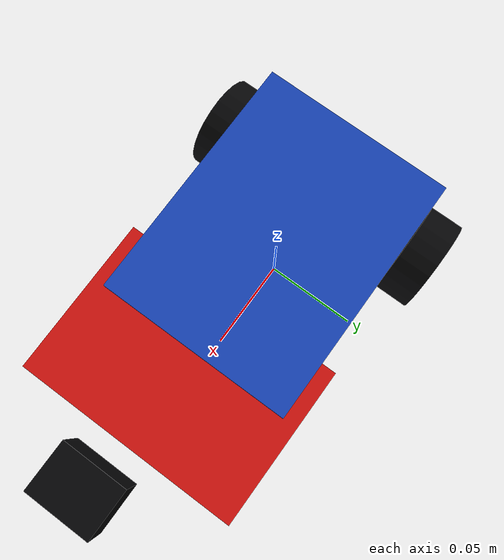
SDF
<?xml version="1.0"?>
<sdf version="1.9">
  <model name="touch_car">
    <pose>0 0 0 0 0 0</pose>

    <link name="base_link">
      <inertial>
        <mass>0.45</mass>
        <inertia>
          <ixx>0.00045</ixx>
          <iyy>0.00075</iyy>
          <izz>0.0010</izz>
        </inertia>
      </inertial>
      <collision name="base_collision">
        <pose>0 0 0.0475 0 0 0</pose>
        <geometry>
          <box>
            <size>0.13 0.10 0.045</size>
          </box>
        </geometry>
      </collision>
      <visual name="base_visual">
        <pose>0 0 0.0475 0 0 0</pose>
        <geometry>
          <box>
            <size>0.13 0.10 0.045</size>
          </box>
        </geometry>
        <material>
          <ambient>0.10 0.28 0.75 1</ambient>
          <diffuse>0.10 0.28 0.75 1</diffuse>
        </material>
      </visual>
    </link>

    <link name="left_wheel_link">
      <pose>-0.045 0.060 0.025 1.57079632679 0 0</pose>
      <inertial>
        <mass>0.06</mass>
        <inertia>
          <ixx>0.00002</ixx>
          <iyy>0.00002</iyy>
          <izz>0.00002</izz>
        </inertia>
      </inertial>
      <collision name="left_wheel_collision">
        <geometry>
          <cylinder>
            <radius>0.025</radius>
            <length>0.018</length>
          </cylinder>
        </geometry>
      </collision>
      <visual name="left_wheel_visual">
        <geometry>
          <cylinder>
            <radius>0.025</radius>
            <length>0.018</length>
          </cylinder>
        </geometry>
        <material>
          <ambient>0.02 0.02 0.025 1</ambient>
          <diffuse>0.02 0.02 0.025 1</diffuse>
        </material>
      </visual>
    </link>

    <link name="right_wheel_link">
      <pose>-0.045 -0.060 0.025 1.57079632679 0 0</pose>
      <inertial>
        <mass>0.06</mass>
        <inertia>
          <ixx>0.00002</ixx>
          <iyy>0.00002</iyy>
          <izz>0.00002</izz>
        </inertia>
      </inertial>
      <collision name="right_wheel_collision">
        <geometry>
          <cylinder>
            <radius>0.025</radius>
            <length>0.018</length>
          </cylinder>
        </geometry>
      </collision>
      <visual name="right_wheel_visual">
        <geometry>
          <cylinder>
            <radius>0.025</radius>
            <length>0.018</length>
          </cylinder>
        </geometry>
        <material>
          <ambient>0.02 0.02 0.025 1</ambient>
          <diffuse>0.02 0.02 0.025 1</diffuse>
        </material>
      </visual>
    </link>

    <link name="caster_wheel_link">
      <pose>0.055 0 0.021 0 0 0</pose>
      <inertial>
        <mass>0.03</mass>
        <inertia>
          <ixx>0.00001</ixx>
          <iyy>0.00001</iyy>
          <izz>0.00001</izz>
        </inertia>
      </inertial>
      <collision name="caster_collision">
        <geometry>
          <sphere>
            <radius>0.018</radius>
          </sphere>
        </geometry>
        <surface>
          <friction>
            <ode>
              <mu>0.05</mu>
              <mu2>0.05</mu2>
            </ode>
          </friction>
        </surface>
      </collision>
      <visual name="caster_visual">
        <geometry>
          <sphere>
            <radius>0.018</radius>
          </sphere>
        </geometry>
        <material>
          <ambient>0.02 0.02 0.025 1</ambient>
          <diffuse>0.02 0.02 0.025 1</diffuse>
        </material>
      </visual>
    </link>

    <link name="front_bumper_link">
      <pose>0.075 0 0.0525 0 0 0</pose>
      <inertial>
        <mass>0.02</mass>
        <inertia>
          <ixx>0.00001</ixx>
          <iyy>0.00001</iyy>
          <izz>0.00001</izz>
        </inertia>
      </inertial>
      <collision name="front_bumper_collision">
        <geometry>
          <box>
            <size>0.080 0.115 0.025</size>
          </box>
        </geometry>
      </collision>
      <visual name="front_bumper_visual">
        <geometry>
          <box>
            <size>0.080 0.115 0.025</size>
          </box>
        </geometry>
        <material>
          <ambient>0.85 0.08 0.06 1</ambient>
          <diffuse>0.85 0.08 0.06 1</diffuse>
        </material>
      </visual>
      <sensor name="front_bumper_sensor" type="contact">
        <always_on>true</always_on>
        <update_rate>30</update_rate>
        <contact>
          <collision>front_bumper_collision</collision>
          <topic>/touch_car/bumper_contacts</topic>
        </contact>
      </sensor>
    </link>

    <link name="front_camera_link">
      <pose>0.135 0 0.085 0 0 0</pose>
      <inertial>
        <mass>0.01</mass>
        <inertia>
          <ixx>0.000001</ixx>
          <iyy>0.000001</iyy>
          <izz>0.000001</izz>
        </inertia>
      </inertial>
      <visual name="front_camera_visual">
        <geometry>
          <box>
            <size>0.024 0.032 0.022</size>
          </box>
        </geometry>
        <material>
          <ambient>0.02 0.02 0.025 1</ambient>
          <diffuse>0.02 0.02 0.025 1</diffuse>
        </material>
      </visual>
      <sensor name="front_camera" type="camera">
        <always_on>true</always_on>
        <update_rate>10</update_rate>
        <topic>/touch_car/front_camera/image</topic>
        <camera>
          <horizontal_fov>1.3962634</horizontal_fov>
          <image>
            <width>650</width>
            <height>900</height>
            <format>R8G8B8</format>
          </image>
          <clip>
            <near>0.01</near>
            <far>5.0</far>
          </clip>
        </camera>
      </sensor>
    </link>

    <joint name="left_wheel_joint" type="revolute">
      <parent>base_link</parent>
      <child>left_wheel_link</child>
      <axis>
        <xyz>0 0 -1</xyz>
        <limit>
          <lower>-1e16</lower>
          <upper>1e16</upper>
        </limit>
      </axis>
    </joint>

    <joint name="right_wheel_joint" type="revolute">
      <parent>base_link</parent>
      <child>right_wheel_link</child>
      <axis>
        <xyz>0 0 -1</xyz>
        <limit>
          <lower>-1e16</lower>
          <upper>1e16</upper>
        </limit>
      </axis>
    </joint>

    <joint name="caster_wheel_joint" type="fixed">
      <parent>base_link</parent>
      <child>caster_wheel_link</child>
    </joint>

    <joint name="front_bumper_joint" type="fixed">
      <parent>base_link</parent>
      <child>front_bumper_link</child>
    </joint>

    <joint name="front_camera_joint" type="fixed">
      <parent>base_link</parent>
      <child>front_camera_link</child>
    </joint>

    <plugin filename="gz-sim-diff-drive-system" name="gz::sim::systems::DiffDrive">
      <left_joint>left_wheel_joint</left_joint>
      <right_joint>right_wheel_joint</right_joint>
      <wheel_separation>0.12</wheel_separation>
      <wheel_radius>0.025</wheel_radius>
      <odom_publish_frequency>20</odom_publish_frequency>
      <max_linear_acceleration>0.4</max_linear_acceleration>
      <min_linear_acceleration>-0.4</min_linear_acceleration>
      <max_angular_acceleration>2.0</max_angular_acceleration>
      <min_angular_acceleration>-2.0</min_angular_acceleration>
      <max_linear_velocity>0.15</max_linear_velocity>
      <min_linear_velocity>-0.15</min_linear_velocity>
      <max_angular_velocity>1.2</max_angular_velocity>
      <min_angular_velocity>-1.2</min_angular_velocity>
    </plugin>
  </model>
</sdf>
